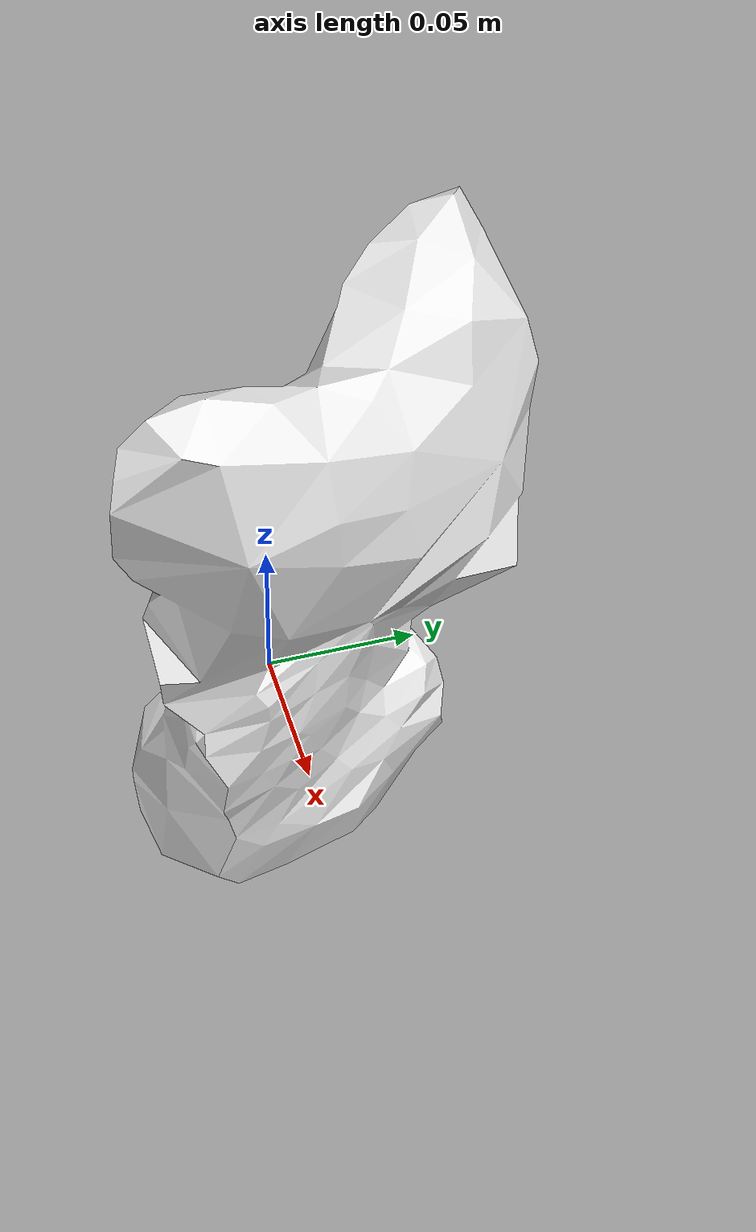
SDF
<?xml version="1.0" ?>
<sdf version="1.4">
  <model name="munchkin_white_hot_duck_bath_toy">
    <link name="munchkin_white_hot_duck_bath_toy_link">
      <inertial>
        <pose>0 0 0 0 0 0</pose>
        <mass>0.08</mass>
      </inertial>

      <visual name="munchkin_white_hot_duck_bath_toy_visual">
        <pose>0 0 0 0 0 0</pose>
        <material>
          <script>
            <uri>model://munchkin_white_hot_duck_bath_toy/materials/scripts</uri>
            <uri>model://munchkin_white_hot_duck_bath_toy/materials/textures</uri>
            <name>munchkin_white_hot_duck_bath_toy</name>
          </script>
        </material>
        <geometry>
          <mesh>
            <uri>model://munchkin_white_hot_duck_bath_toy/meshes/munchkin_white_hot_duck_bath_toy.dae</uri>
          </mesh>
        </geometry>
      </visual>

      <collision name="munchkin_white_hot_duck_bath_toy_collision">
        <pose>0 0 0 0 0 0</pose>
        <geometry>
          <mesh>
            <uri>model://munchkin_white_hot_duck_bath_toy/meshes/munchkin_white_hot_duck_bath_toy.dae</uri>
          </mesh>
        </geometry>
        <surface>
          <friction>
            <ode>
              <mu>0.8</mu>
              <mu2>0.8</mu2>
            </ode>
          </friction>
        </surface>
      </collision>

    </link>
  </model>
</sdf>
